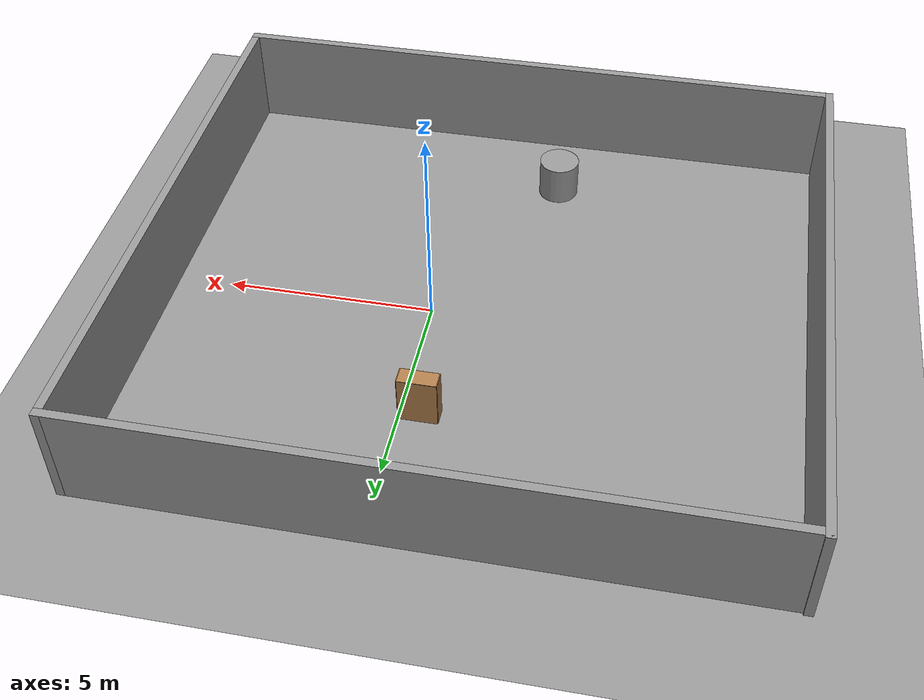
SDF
<sdf version="1.4">
 <world name="default">
  <light name="sun" type="directional">
   <pose>0 0 10 0 -0 0</pose>
   <diffuse>0.8 0.8 0.8 1</diffuse>
   <specular>0.2 0.2 0.2 1</specular>
   <attenuation>
    <range>1000</range>
    <constant>0.9</constant>
    <linear>0.01</linear>
    <quadratic>0.001</quadratic>
   </attenuation>
   <direction>0.5 0.1 -0.9</direction>
  </light>
  <scene><ambient>0.4 0.4 0.4 1</ambient><background>0.7 0.7 0.7 1</background><shadows>1</shadows></scene>
  <physics type="ode">
   <max_step_size>0.01</max_step_size>
   <real_time_factor>1</real_time_factor>
   <real_time_update_rate>100</real_time_update_rate>
   <gravity>0 0 -9.8</gravity>
  </physics>
  <model name="squareRoom">
   <pose>5.73332 1.4452 0 0 -0 0</pose>
   <link name="Wall_31">
    <collision name="Wall_31_Collision">
     <geometry><box><size>14.2044 0.2 2.5</size></box></geometry>
     <pose>0 0 1.25 0 -0 0</pose>
    </collision>
    <visual name="Wall_31_Visual">
     <pose>0 0 1.25 0 -0 0</pose>
     <geometry><box><size>14.2044 0.2 2.5</size></box></geometry>
     <material>
      <script><uri>file://media/materials/scripts/gazebo.material</uri><name>Gazebo/Grey</name></script>
     </material>
    </visual>
    <velocity_decay><linear>0</linear><angular>0</angular></velocity_decay>
    <pose>-14.709 -1.6415 0 0 0 -1.5708</pose>
   </link>
   <link name="Wall_32">
    <collision name="Wall_32_Collision">
     <geometry><box><size>15.5994 0.2 2.5</size></box></geometry>
     <pose>0 0 1.25 0 -0 0</pose>
    </collision>
    <visual name="Wall_32_Visual">
     <pose>0 0 1.25 0 -0 0</pose>
     <geometry><box><size>15.5994 0.2 2.5</size></box></geometry>
     <material>
      <script><uri>file://media/materials/scripts/gazebo.material</uri><name>Gazebo/Grey</name></script>
     </material>
    </visual>
    <velocity_decay><linear>0</linear><angular>0</angular></velocity_decay>
    <pose>-7.00907 -8.64377 0 0 -0 3e-05</pose>
   </link>
   <link name="Wall_33">
    <collision name="Wall_33_Collision">
     <geometry><box><size>14.1572 0.2 2.5</size></box></geometry>
     <pose>0 0 1.25 0 -0 0</pose>
    </collision>
    <visual name="Wall_33_Visual">
     <pose>0 0 1.25 0 -0 0</pose>
     <geometry><box><size>14.1572 0.2 2.5</size></box></geometry>
     <material>
      <script><uri>file://media/materials/scripts/gazebo.material</uri><name>Gazebo/Grey</name></script>
     </material>
    </visual>
    <velocity_decay><linear>0</linear><angular>0</angular></velocity_decay>
    <pose>0.690852 -1.66496 0 0 -0 1.5708</pose>
   </link>
   <link name="Wall_34">
    <collision name="Wall_34_Collision">
     <geometry><box><size>15.5529 0.2 2.5</size></box></geometry>
     <pose>0 0 1.25 0 -0 0</pose>
    </collision>
    <visual name="Wall_34_Visual">
     <pose>0 0 1.25 0 -0 0</pose>
     <geometry><box><size>15.5529 0.2 2.5</size></box></geometry>
     <material>
      <script><uri>file://media/materials/scripts/gazebo.material</uri><name>Gazebo/Grey</name></script>
     </material>
    </visual>
    <velocity_decay><linear>0</linear><angular>0</angular></velocity_decay>
    <pose>-6.98559 5.31363 0 0 -0 3.14159</pose>
   </link>
   <static>1</static>
  </model>
  <model name="bookshelf">
   <static>1</static>
   <link name="link">
    <inertial><mass>1</mass></inertial>
    <collision name="back">
     <pose>0 0.005 0.6 0 -0 0</pose>
     <geometry><box><size>0.9 0.01 1.2</size></box></geometry>
    </collision>
    <visual name="visual1">
     <pose>0 0.005 0.6 0 -0 0</pose>
     <geometry><box><size>0.9 0.01 1.2</size></box></geometry>
     <material>
      <script><uri>file://media/materials/scripts/gazebo.material</uri><name>Gazebo/Wood</name></script>
     </material>
    </visual>
    <collision name="left_side">
     <pose>0.45 -0.195 0.6 0 -0 0</pose>
     <geometry><box><size>0.02 0.4 1.2</size></box></geometry>
    </collision>
    <visual name="visual2">
     <pose>0.45 -0.195 0.6 0 -0 0</pose>
     <geometry><box><size>0.02 0.4 1.2</size></box></geometry>
     <material>
      <script><uri>file://media/materials/scripts/gazebo.material</uri><name>Gazebo/Wood</name></script>
     </material>
    </visual>
    <collision name="right_side">
     <pose>-0.45 -0.195 0.6 0 -0 0</pose>
     <geometry><box><size>0.02 0.4 1.2</size></box></geometry>
    </collision>
    <visual name="visual3">
     <pose>-0.45 -0.195 0.6 0 -0 0</pose>
     <geometry><box><size>0.02 0.4 1.2</size></box></geometry>
     <material>
      <script><uri>file://media/materials/scripts/gazebo.material</uri><name>Gazebo/Wood</name></script>
     </material>
    </visual>
    <collision name="bottom">
     <pose>0 -0.195 0.03 0 -0 0</pose>
     <geometry><box><size>0.88 0.4 0.06</size></box></geometry>
    </collision>
    <visual name="visual4">
     <pose>0 -0.195 0.03 0 -0 0</pose>
     <geometry><box><size>0.88 0.4 0.06</size></box></geometry>
     <material>
      <script><uri>file://media/materials/scripts/gazebo.material</uri><name>Gazebo/Wood</name></script>
     </material>
    </visual>
    <collision name="top">
     <pose>0 -0.195 1.19 0 -0 0</pose>
     <geometry><box><size>0.88 0.4 0.02</size></box></geometry>
    </collision>
    <visual name="visual5">
     <pose>0 -0.195 1.19 0 -0 0</pose>
     <geometry><box><size>0.88 0.4 0.02</size></box></geometry>
     <material>
      <script><uri>file://media/materials/scripts/gazebo.material</uri><name>Gazebo/Wood</name></script>
     </material>
    </visual>
    <collision name="low_shelf">
     <pose>0 -0.195 0.43 0 -0 0</pose>
     <geometry><box><size>0.88 0.4 0.02</size></box></geometry>
    </collision>
    <visual name="visual6">
     <pose>0 -0.195 0.43 0 -0 0</pose>
     <geometry><box><size>0.88 0.4 0.02</size></box></geometry>
     <material>
      <script><uri>file://media/materials/scripts/gazebo.material</uri><name>Gazebo/Wood</name></script>
     </material>
    </visual>
    <collision name="high_shelf">
     <pose>0 -0.195 0.8 0 -0 0</pose>
     <geometry><box><size>0.88 0.4 0.02</size></box></geometry>
    </collision>
    <visual name="visual7">
     <pose>0 -0.195 0.8 0 -0 0</pose>
     <geometry><box><size>0.88 0.4 0.02</size></box></geometry>
     <material>
      <script><uri>file://media/materials/scripts/gazebo.material</uri><name>Gazebo/Wood</name></script>
     </material>
    </visual>
    <velocity_decay><linear>0</linear><angular>0</angular></velocity_decay>
   </link>
   <pose>-0.458766 3.46946 0 0 -0 0</pose>
  </model>
  <model name="ground_plane_0">
   <static>1</static>
   <link name="link">
    <collision name="collision">
     <geometry><plane><normal>0 0 1</normal><size>100 100</size></plane></geometry>
     <surface><friction><ode><mu>100</mu><mu2>50</mu2></ode></friction></surface>
    </collision>
    <visual name="visual">
     <cast_shadows>0</cast_shadows>
     <geometry><plane><normal>0 0 1</normal><size>100 100</size></plane></geometry>
     <material>
      <script><uri>file://media/materials/scripts/gazebo.material</uri><name>Gazebo/Grey</name></script>
     </material>
    </visual>
    <velocity_decay><linear>0</linear><angular>0</angular></velocity_decay>
   </link>
   <pose>0.497681 0 0 0 -0 0</pose>
  </model>
  <model name="unit_cylinder_1">
   <pose>-2.31386 -5.12361 0.49912 -0 -0 -1e-06</pose>
   <link name="link">
    <inertial>
     <mass>1</mass>
     <inertia><ixx>1</ixx><ixy>0</ixy><ixz>0</ixz><iyy>1</iyy><iyz>0</iyz><izz>1</izz></inertia>
    </inertial>
    <collision name="collision">
     <geometry><cylinder><radius>0.5</radius><length>1</length></cylinder></geometry>
    </collision>
    <visual name="visual">
     <geometry><cylinder><radius>0.5</radius><length>1</length></cylinder></geometry>
     <material>
      <script><uri>file://media/materials/scripts/gazebo.material</uri><name>Gazebo/Grey</name></script>
     </material>
    </visual>
    <velocity_decay><linear>0</linear><angular>0</angular></velocity_decay>
   </link>
   <static>0</static>
  </model>
  <spherical_coordinates>
   <surface_model>EARTH_WGS84</surface_model>
   <latitude_deg>0</latitude_deg>
   <longitude_deg>0</longitude_deg>
   <elevation>0</elevation>
   <heading_deg>0</heading_deg>
  </spherical_coordinates>
 </world>
</sdf>
